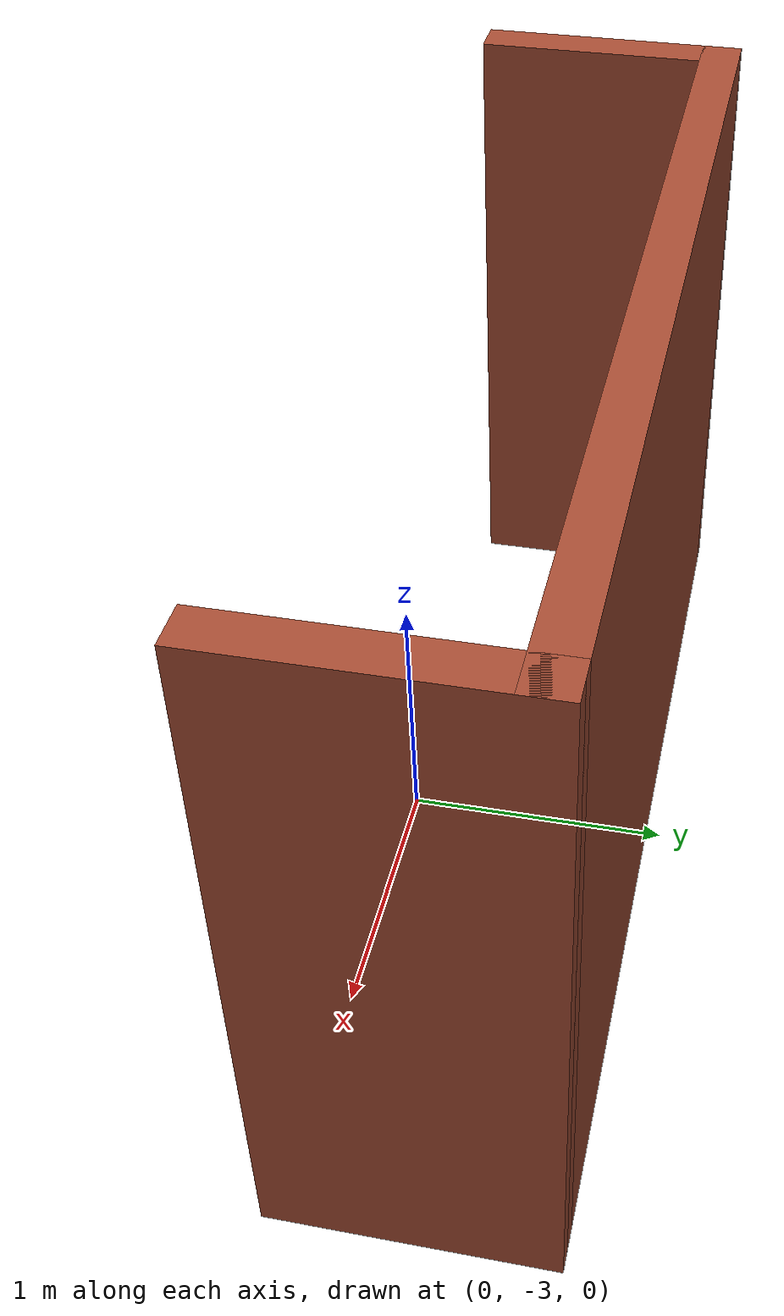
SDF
<?xml version='1.0'?>
<sdf version='1.7'>
  <model name='wall'>
    <pose>0.01 -1.5275 0 0 -0 0</pose>
    <link name='Wall_3'>
      <collision name='Wall_3_Collision'>
        <geometry>
          <box>
            <size>3.75 0.15 2.5</size>
          </box>
        </geometry>
        <pose>0 0 1.25 0 -0 0</pose>
      </collision>
      <visual name='Wall_3_Visual'>
        <pose>0 0 1.25 0 -0 0</pose>
        <geometry>
          <box>
            <size>3.75 0.15 2.5</size>
          </box>
        </geometry>
        <material>
          <script>
            <uri>file://media/materials/scripts/gazebo.material</uri>
            <name>Gazebo/Bricks</name>
          </script>
          <ambient>1 1 1 1</ambient>
        </material>
        <meta>
          <layer>0</layer>
        </meta>
      </visual>
      <pose>0 -0.6025 0 0 -0 0</pose>
    </link>
    <link name='Wall_4'>
      <collision name='Wall_4_Collision'>
        <geometry>
          <box>
            <size>1 0.15 2.5</size>
          </box>
        </geometry>
        <pose>0 0 1.25 0 -0 0</pose>
      </collision>
      <visual name='Wall_4_Visual'>
        <pose>0 0 1.25 0 -0 0</pose>
        <geometry>
          <box>
            <size>1 0.15 2.5</size>
          </box>
        </geometry>
        <material>
          <script>
            <uri>file://media/materials/scripts/gazebo.material</uri>
            <name>Gazebo/Bricks</name>
          </script>
          <ambient>1 1 1 1</ambient>
        </material>
        <meta>
          <layer>0</layer>
        </meta>
      </visual>
      <pose>1.8 -1.0275 0 0 -0 -1.5708</pose>
    </link>
    <link name='Wall_6'>
      <collision name='Wall_6_Collision'>
        <geometry>
          <box>
            <size>1 0.15 2.5</size>
          </box>
        </geometry>
        <pose>0 0 1.25 0 -0 0</pose>
      </collision>
      <visual name='Wall_6_Visual'>
        <pose>0 0 1.25 0 -0 0</pose>
        <geometry>
          <box>
            <size>1 0.15 2.5</size>
          </box>
        </geometry>
        <material>
          <script>
            <uri>file://media/materials/scripts/gazebo.material</uri>
            <name>Gazebo/Bricks</name>
          </script>
          <ambient>1 1 1 1</ambient>
        </material>
        <meta>
          <layer>0</layer>
        </meta>
      </visual>
      <pose>-1.8 -1.0275 0 0 -0 -1.5708</pose>
    </link>
    <static>1</static>
  </model>
</sdf>
